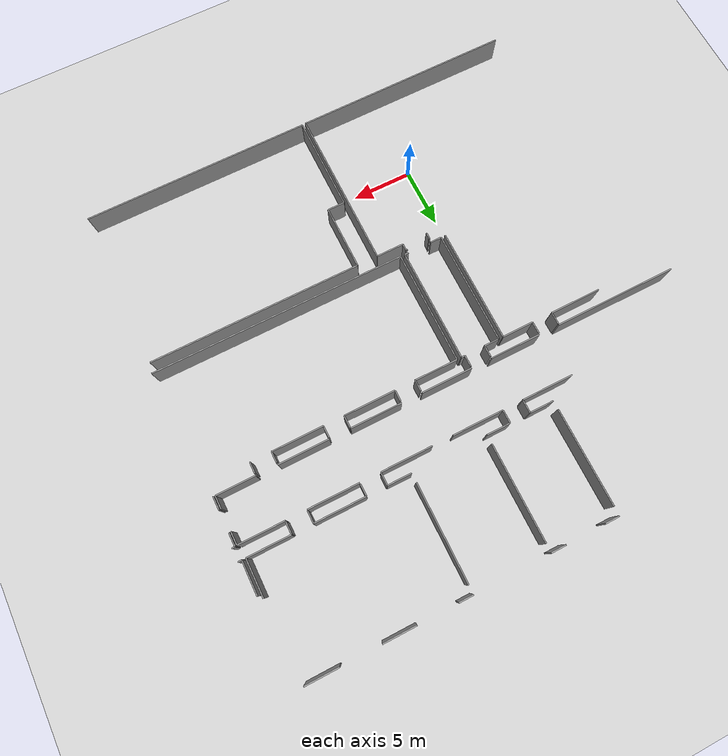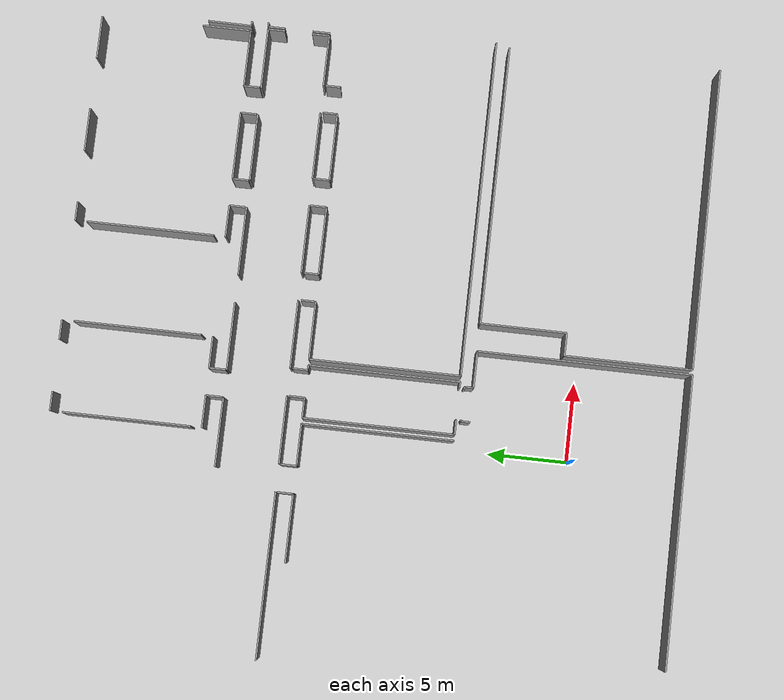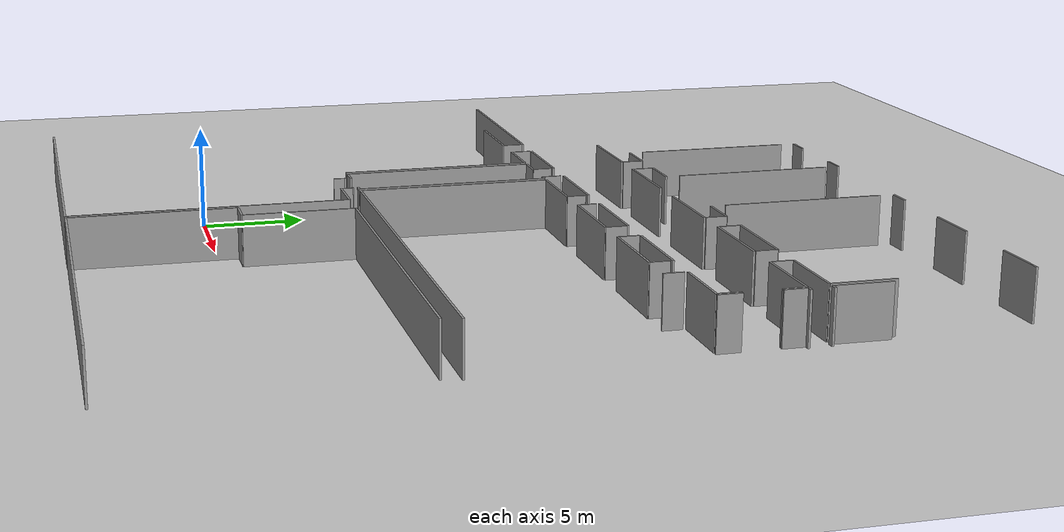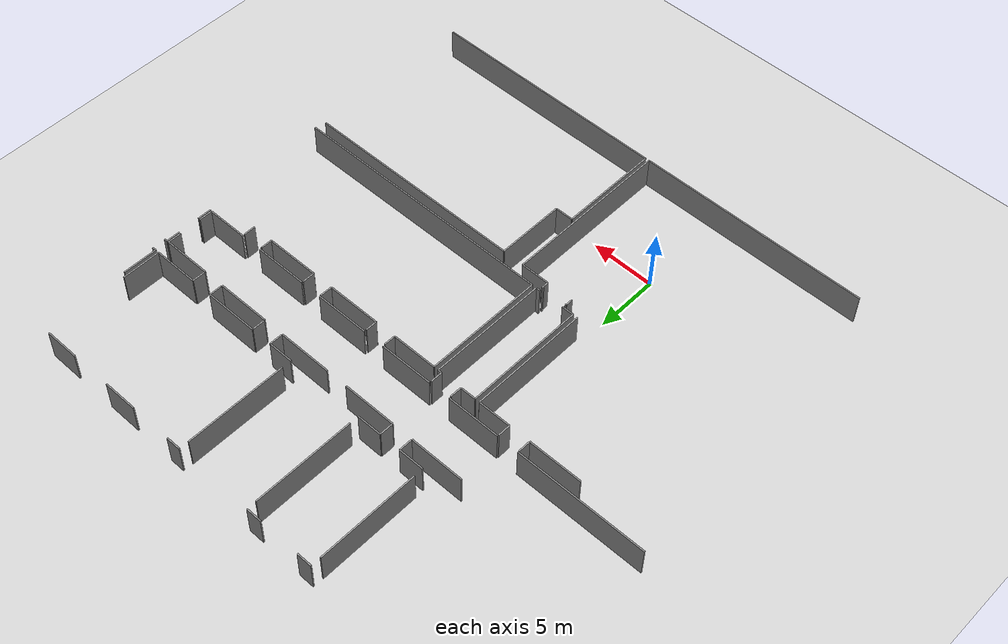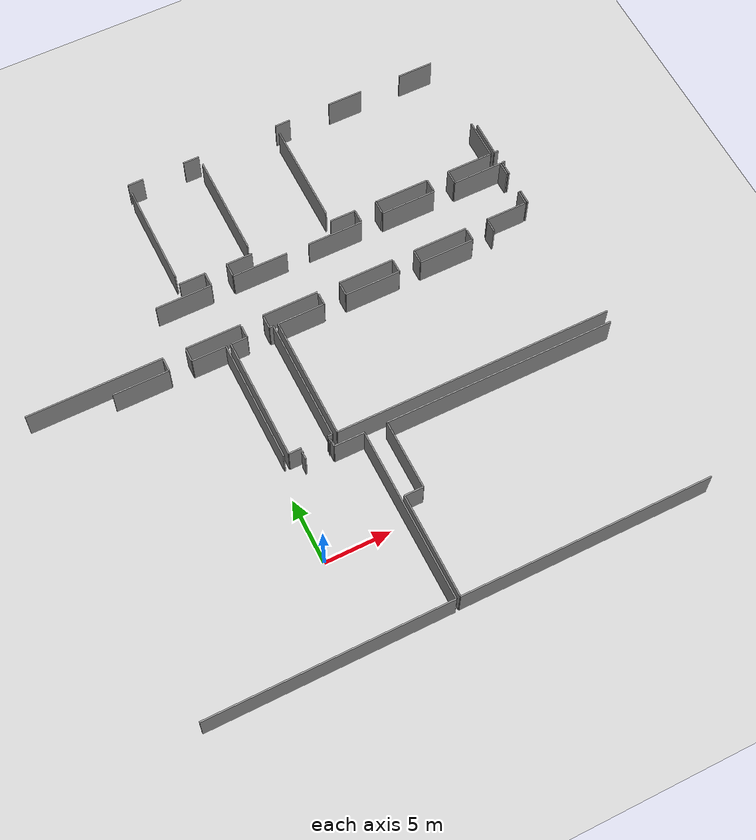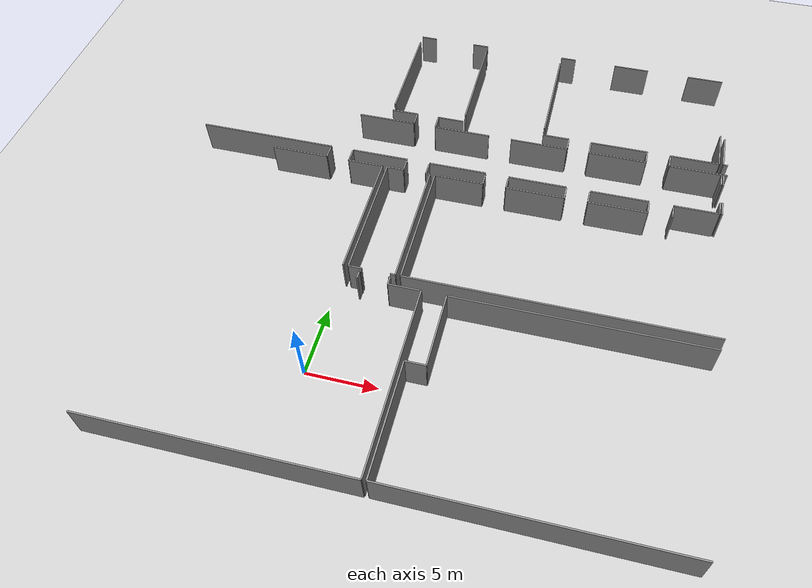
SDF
<sdf version="1.6">
 <world name="default">
  <model name="ground_plane">
   <static>1</static>
   <link name="link">
    <collision name="collision">
     <geometry><plane><normal>0 0 1</normal><size>100 100</size></plane></geometry>
     <surface><friction><ode><mu>100</mu><mu2>50</mu2></ode></friction></surface>
    </collision>
    <visual name="visual">
     <cast_shadows>0</cast_shadows>
     <geometry><plane><normal>0 0 1</normal><size>100 100</size></plane></geometry>
     <material>
      <script><uri>file://media/materials/scripts/gazebo.material</uri><name>Gazebo/Grey</name></script>
     </material>
    </visual>
   </link>
  </model>
  <model name="50052749">
   <static>1</static>
   <link name="Wall_86">
    <collision name="Wall_86_Collision">
     <geometry><box><size>7.98409470145 0.1 2.5</size></box></geometry>
     <pose>3.99204735072 0 1.25 0 0 0</pose>
    </collision>
    <visual name="Wall_86_Visual">
     <pose>3.99204735072 0 1.25 0 0 0</pose>
     <geometry><box><size>7.98409470145 0.1 2.5</size></box></geometry>
     <material>
      <script><uri>file://media/materials/scripts/gazebo.material</uri><name>Gazebo/Grey</name></script>
      <ambient>1 1 1 1</ambient>
     </material>
    </visual>
    <pose>42.047350723 -8.75615594902 0 0 0 1.57079632679</pose>
   </link>
   <link name="Wall_87">
    <collision name="Wall_87_Collision">
     <geometry><box><size>1.20684495884 0.1 2.5</size></box></geometry>
     <pose>0.603422479421 0 1.25 0 0 0</pose>
    </collision>
    <visual name="Wall_87_Visual">
     <pose>0.603422479421 0 1.25 0 0 0</pose>
     <geometry><box><size>1.20684495884 0.1 2.5</size></box></geometry>
     <material>
      <script><uri>file://media/materials/scripts/gazebo.material</uri><name>Gazebo/Grey</name></script>
      <ambient>1 1 1 1</ambient>
     </material>
    </visual>
    <pose>42.047350723 -0.0237108643941 0 0 0 0.0</pose>
   </link>
   <link name="Wall_88">
    <collision name="Wall_88_Collision">
     <geometry><box><size>1.23943154788 0.1 2.5</size></box></geometry>
     <pose>0.619715773938 0 1.25 0 0 0</pose>
    </collision>
    <visual name="Wall_88_Visual">
     <pose>0.619715773938 0 1.25 0 0 0</pose>
     <geometry><box><size>1.23943154788 0.1 2.5</size></box></geometry>
     <material>
      <script><uri>file://media/materials/scripts/gazebo.material</uri><name>Gazebo/Grey</name></script>
      <ambient>1 1 1 1</ambient>
     </material>
    </visual>
    <pose>46.5098114796 -0.0237108643941 0 0 0 0.0</pose>
   </link>
   <link name="Wall_89">
    <collision name="Wall_89_Collision">
     <geometry><box><size>7.99170246542 0.1 2.5</size></box></geometry>
     <pose>3.99585123271 0 1.25 0 0 0</pose>
    </collision>
    <visual name="Wall_89_Visual">
     <pose>3.99585123271 0 1.25 0 0 0</pose>
     <geometry><box><size>7.99170246542 0.1 2.5</size></box></geometry>
     <material>
      <script><uri>file://media/materials/scripts/gazebo.material</uri><name>Gazebo/Grey</name></script>
      <ambient>1 1 1 1</ambient>
     </material>
    </visual>
    <pose>47.7492430275 -0.743405336593 0 0 0 -1.57079632679</pose>
   </link>
   <link name="Wall_90">
    <collision name="Wall_90_Collision">
     <geometry><box><size>1.97992057494 0.1 2.5</size></box></geometry>
     <pose>0.989960287472 0 1.25 0 0 0</pose>
    </collision>
    <visual name="Wall_90_Visual">
     <pose>0.989960287472 0 1.25 0 0 0</pose>
     <geometry><box><size>1.97992057494 0.1 2.5</size></box></geometry>
     <material>
      <script><uri>file://media/materials/scripts/gazebo.material</uri><name>Gazebo/Grey</name></script>
      <ambient>1 1 1 1</ambient>
     </material>
    </visual>
    <pose>47.7492430275 -9.460127709 0 0 0 3.14159265359</pose>
   </link>
   <link name="Wall_91">
    <collision name="Wall_91_Collision">
     <geometry><box><size>1.04556036254 0.1 2.5</size></box></geometry>
     <pose>0.522780181268 0 1.25 0 0 0</pose>
    </collision>
    <visual name="Wall_91_Visual">
     <pose>0.522780181268 0 1.25 0 0 0</pose>
     <geometry><box><size>1.04556036254 0.1 2.5</size></box></geometry>
     <material>
      <script><uri>file://media/materials/scripts/gazebo.material</uri><name>Gazebo/Grey</name></script>
      <ambient>1 1 1 1</ambient>
     </material>
    </visual>
    <pose>45.7693224525 -9.460127709 0 0 0 -1.57079632679</pose>
   </link>
   <link name="Wall_92">
    <collision name="Wall_92_Collision">
     <geometry><box><size>1.0366846379 0.1 2.5</size></box></geometry>
     <pose>0.518342318948 0 1.25 0 0 0</pose>
    </collision>
    <visual name="Wall_92_Visual">
     <pose>0.518342318948 0 1.25 0 0 0</pose>
     <geometry><box><size>1.0366846379 0.1 2.5</size></box></geometry>
     <material>
      <script><uri>file://media/materials/scripts/gazebo.material</uri><name>Gazebo/Grey</name></script>
      <ambient>1 1 1 1</ambient>
     </material>
    </visual>
    <pose>44.0577023538 -10.5056880715 0 0 0 1.57079632679</pose>
   </link>
   <link name="Wall_93">
    <collision name="Wall_93_Collision">
     <geometry><box><size>2.01035163085 0.1 2.5</size></box></geometry>
     <pose>1.00517581543 0 1.25 0 0 0</pose>
    </collision>
    <visual name="Wall_93_Visual">
     <pose>1.00517581543 0 1.25 0 0 0</pose>
     <geometry><box><size>2.01035163085 0.1 2.5</size></box></geometry>
     <material>
      <script><uri>file://media/materials/scripts/gazebo.material</uri><name>Gazebo/Grey</name></script>
      <ambient>1 1 1 1</ambient>
     </material>
    </visual>
    <pose>44.0577023538 -9.46900343364 0 0 0 3.14159265359</pose>
   </link>
   <link name="Wall_94">
    <collision name="Wall_94_Collision">
     <geometry><box><size>7.99335081428 0.1 2.5</size></box></geometry>
     <pose>3.99667540714 0 1.25 0 0 0</pose>
    </collision>
    <visual name="Wall_94_Visual">
     <pose>3.99667540714 0 1.25 0 0 0</pose>
     <geometry><box><size>7.99335081428 0.1 2.5</size></box></geometry>
     <material>
      <script><uri>file://media/materials/scripts/gazebo.material</uri><name>Gazebo/Grey</name></script>
      <ambient>1 1 1 1</ambient>
     </material>
    </visual>
    <pose>54.0464428632 -8.7396724604 0 0 0 1.57079632679</pose>
   </link>
   <link name="Wall_95">
    <collision name="Wall_95_Collision">
     <geometry><box><size>1.17894982426 0.1 2.5</size></box></geometry>
     <pose>0.58947491213 0 1.25 0 0 0</pose>
    </collision>
    <visual name="Wall_95_Visual">
     <pose>0.58947491213 0 1.25 0 0 0</pose>
     <geometry><box><size>1.17894982426 0.1 2.5</size></box></geometry>
     <material>
      <script><uri>file://media/materials/scripts/gazebo.material</uri><name>Gazebo/Grey</name></script>
      <ambient>1 1 1 1</ambient>
     </material>
    </visual>
    <pose>54.0464428632 -0.0281487267139 0 0 0 0.0</pose>
   </link>
   <link name="Wall_96">
    <collision name="Wall_96_Collision">
     <geometry><box><size>2.72193115481 0.1 2.5</size></box></geometry>
     <pose>1.3609655774 0 1.25 0 0 0</pose>
    </collision>
    <visual name="Wall_96_Visual">
     <pose>1.3609655774 0 1.25 0 0 0</pose>
     <geometry><box><size>2.72193115481 0.1 2.5</size></box></geometry>
     <material>
      <script><uri>file://media/materials/scripts/gazebo.material</uri><name>Gazebo/Grey</name></script>
      <ambient>1 1 1 1</ambient>
     </material>
    </visual>
    <pose>58.5089036198 -0.0281487267139 0 0 0 0.0</pose>
   </link>
   <link name="Wall_97">
    <collision name="Wall_97_Collision">
     <geometry><box><size>2.73144085978 0.1 2.5</size></box></geometry>
     <pose>1.36572042989 0 1.25 0 0 0</pose>
    </collision>
    <visual name="Wall_97_Visual">
     <pose>1.36572042989 0 1.25 0 0 0</pose>
     <geometry><box><size>2.73144085978 0.1 2.5</size></box></geometry>
     <material>
      <script><uri>file://media/materials/scripts/gazebo.material</uri><name>Gazebo/Grey</name></script>
      <ambient>1 1 1 1</ambient>
     </material>
    </visual>
    <pose>64.4946923167 -0.0281487267139 0 0 0 0.0</pose>
   </link>
   <link name="Wall_102">
    <collision name="Wall_102_Collision">
     <geometry><box><size>3.04386636709 0.1 2.5</size></box></geometry>
     <pose>1.52193318354 0 1.25 0 0 0</pose>
    </collision>
    <visual name="Wall_102_Visual">
     <pose>1.52193318354 0 1.25 0 0 0</pose>
     <geometry><box><size>3.04386636709 0.1 2.5</size></box></geometry>
     <material>
      <script><uri>file://media/materials/scripts/gazebo.material</uri><name>Gazebo/Grey</name></script>
      <ambient>1 1 1 1</ambient>
     </material>
    </visual>
    <pose>67.3278236216 -6.43401279119 0 0 0 -1.57079632679</pose>
   </link>
   <link name="Wall_103">
    <collision name="Wall_103_Collision">
     <geometry><box><size>3.5958096436 0.1 2.5</size></box></geometry>
     <pose>1.7979048218 0 1.25 0 0 0</pose>
    </collision>
    <visual name="Wall_103_Visual">
     <pose>1.7979048218 0 1.25 0 0 0</pose>
     <geometry><box><size>3.5958096436 0.1 2.5</size></box></geometry>
     <material>
      <script><uri>file://media/materials/scripts/gazebo.material</uri><name>Gazebo/Grey</name></script>
      <ambient>1 1 1 1</ambient>
     </material>
    </visual>
    <pose>67.3278236216 -9.47787915828 0 0 0 3.14159265359</pose>
   </link>
   <link name="Wall_104">
    <collision name="Wall_104_Collision">
     <geometry><box><size>1.0122129971 0.1 2.5</size></box></geometry>
     <pose>0.506106498552 0 1.25 0 0 0</pose>
    </collision>
    <visual name="Wall_104_Visual">
     <pose>0.506106498552 0 1.25 0 0 0</pose>
     <geometry><box><size>1.0122129971 0.1 2.5</size></box></geometry>
     <material>
      <script><uri>file://media/materials/scripts/gazebo.material</uri><name>Gazebo/Grey</name></script>
      <ambient>1 1 1 1</ambient>
     </material>
    </visual>
    <pose>63.732013978 -9.47787915828 0 0 0 -1.57079632679</pose>
   </link>
   <link name="Wall_105">
    <collision name="Wall_105_Collision">
     <geometry><box><size>1.01690445156 0.1 2.5</size></box></geometry>
     <pose>0.508452225778 0 1.25 0 0 0</pose>
    </collision>
    <visual name="Wall_105_Visual">
     <pose>0.508452225778 0 1.25 0 0 0</pose>
     <geometry><box><size>1.01690445156 0.1 2.5</size></box></geometry>
     <material>
      <script><uri>file://media/materials/scripts/gazebo.material</uri><name>Gazebo/Grey</name></script>
      <ambient>1 1 1 1</ambient>
     </material>
    </visual>
    <pose>61.9952882582 -10.4900921554 0 0 0 1.57079632679</pose>
   </link>
   <link name="Wall_106">
    <collision name="Wall_106_Collision">
     <geometry><box><size>4.25020414167 0.1 2.5</size></box></geometry>
     <pose>2.12510207083 0 1.25 0 0 0</pose>
    </collision>
    <visual name="Wall_106_Visual">
     <pose>2.12510207083 0 1.25 0 0 0</pose>
     <geometry><box><size>4.25020414167 0.1 2.5</size></box></geometry>
     <material>
      <script><uri>file://media/materials/scripts/gazebo.material</uri><name>Gazebo/Grey</name></script>
      <ambient>1 1 1 1</ambient>
     </material>
    </visual>
    <pose>61.9952882582 -9.47318770382 0 0 0 3.14159265359</pose>
   </link>
   <link name="Wall_107">
    <collision name="Wall_107_Collision">
     <geometry><box><size>1.01348095777 0.1 2.5</size></box></geometry>
     <pose>0.506740478883 0 1.25 0 0 0</pose>
    </collision>
    <visual name="Wall_107_Visual">
     <pose>0.506740478883 0 1.25 0 0 0</pose>
     <geometry><box><size>1.01348095777 0.1 2.5</size></box></geometry>
     <material>
      <script><uri>file://media/materials/scripts/gazebo.material</uri><name>Gazebo/Grey</name></script>
      <ambient>1 1 1 1</ambient>
     </material>
    </visual>
    <pose>57.7450841165 -9.47318770382 0 0 0 -1.57079632679</pose>
   </link>
   <link name="Wall_108">
    <collision name="Wall_108_Collision">
     <geometry><box><size>1.0024497 0.1 2.5</size></box></geometry>
     <pose>0.50122485 0 1.25 0 0 0</pose>
    </collision>
    <visual name="Wall_108_Visual">
     <pose>0.50122485 0 1.25 0 0 0</pose>
     <geometry><box><size>1.0024497 0.1 2.5</size></box></geometry>
     <material>
      <script><uri>file://media/materials/scripts/gazebo.material</uri><name>Gazebo/Grey</name></script>
      <ambient>1 1 1 1</ambient>
     </material>
    </visual>
    <pose>56.0366339195 -10.4866686616 0 0 0 1.57079632679</pose>
   </link>
   <link name="Wall_109">
    <collision name="Wall_109_Collision">
     <geometry><box><size>1.99019784606 0.1 2.5</size></box></geometry>
     <pose>0.995098923031 0 1.25 0 0 0</pose>
    </collision>
    <visual name="Wall_109_Visual">
     <pose>0.995098923031 0 1.25 0 0 0</pose>
     <geometry><box><size>1.99019784606 0.1 2.5</size></box></geometry>
     <material>
      <script><uri>file://media/materials/scripts/gazebo.material</uri><name>Gazebo/Grey</name></script>
      <ambient>1 1 1 1</ambient>
     </material>
    </visual>
    <pose>56.0366339195 -9.48421896159 0 0 0 3.13898052905</pose>
   </link>
   <link name="Wall_110">
    <collision name="Wall_110_Collision">
     <geometry><box><size>0.319779679155 0.1 2.5</size></box></geometry>
     <pose>0.159889839578 0 1.25 0 0 0</pose>
    </collision>
    <visual name="Wall_110_Visual">
     <pose>0.159889839578 0 1.25 0 0 0</pose>
     <geometry><box><size>0.319779679155 0.1 2.5</size></box></geometry>
     <material>
      <script><uri>file://media/materials/scripts/gazebo.material</uri><name>Gazebo/Grey</name></script>
      <ambient>1 1 1 1</ambient>
     </material>
    </visual>
    <pose>67.6318805885 -9.48650129078 0 0 0 0.0</pose>
   </link>
   <link name="Wall_119">
    <collision name="Wall_119_Collision">
     <geometry><box><size>2.73582435268 0.1 2.5</size></box></geometry>
     <pose>1.36791217634 0 1.25 0 0 0</pose>
    </collision>
    <visual name="Wall_119_Visual">
     <pose>1.36791217634 0 1.25 0 0 0</pose>
     <geometry><box><size>2.73582435268 0.1 2.5</size></box></geometry>
     <material>
      <script><uri>file://media/materials/scripts/gazebo.material</uri><name>Gazebo/Grey</name></script>
      <ambient>1 1 1 1</ambient>
     </material>
    </visual>
    <pose>67.6517875709 -6.75074936475 0 0 0 -1.578072802</pose>
   </link>
   <link name="Wall_125">
    <collision name="Wall_125_Collision">
     <geometry><box><size>4.29217363961 0.1 2.5</size></box></geometry>
     <pose>2.1460868198 0 1.25 0 0 0</pose>
    </collision>
    <visual name="Wall_125_Visual">
     <pose>2.1460868198 0 1.25 0 0 0</pose>
     <geometry><box><size>4.29217363961 0.1 2.5</size></box></geometry>
     <material>
      <script><uri>file://media/materials/scripts/gazebo.material</uri><name>Gazebo/Grey</name></script>
      <ambient>1 1 1 1</ambient>
     </material>
    </visual>
    <pose>39.7504399823 -10.5632534856 0 0 0 0.0</pose>
   </link>
   <link name="Wall_126">
    <collision name="Wall_126_Collision">
     <geometry><box><size>4.24513229902 0.1 2.5</size></box></geometry>
     <pose>2.12256614951 0 1.25 0 0 0</pose>
    </collision>
    <visual name="Wall_126_Visual">
     <pose>2.12256614951 0 1.25 0 0 0</pose>
     <geometry><box><size>4.24513229902 0.1 2.5</size></box></geometry>
     <material>
      <script><uri>file://media/materials/scripts/gazebo.material</uri><name>Gazebo/Grey</name></script>
      <ambient>1 1 1 1</ambient>
     </material>
    </visual>
    <pose>45.7670401233 -10.5632534856 0 0 0 0.0</pose>
   </link>
   <link name="Wall_127">
    <collision name="Wall_127_Collision">
     <geometry><box><size>4.28570704022 0.1 2.5</size></box></geometry>
     <pose>2.14285352011 0 1.25 0 0 0</pose>
    </collision>
    <visual name="Wall_127_Visual">
     <pose>2.14285352011 0 1.25 0 0 0</pose>
     <geometry><box><size>4.28570704022 0.1 2.5</size></box></geometry>
     <material>
      <script><uri>file://media/materials/scripts/gazebo.material</uri><name>Gazebo/Grey</name></script>
      <ambient>1 1 1 1</ambient>
     </material>
    </visual>
    <pose>51.754350373 -10.5632534856 0 0 0 0.0</pose>
   </link>
   <link name="Wall_128">
    <collision name="Wall_128_Collision">
     <geometry><box><size>4.24361074622 0.1 2.5</size></box></geometry>
     <pose>2.12180537311 0 1.25 0 0 0</pose>
    </collision>
    <visual name="Wall_128_Visual">
     <pose>2.12180537311 0 1.25 0 0 0</pose>
     <geometry><box><size>4.24361074622 0.1 2.5</size></box></geometry>
     <material>
      <script><uri>file://media/materials/scripts/gazebo.material</uri><name>Gazebo/Grey</name></script>
      <ambient>1 1 1 1</ambient>
     </material>
    </visual>
    <pose>57.7557349861 -10.5632534856 0 0 0 0.0</pose>
   </link>
   <link name="Wall_129">
    <collision name="Wall_129_Collision">
     <geometry><box><size>3.81846353599 0.1 2.5</size></box></geometry>
     <pose>1.90923176799 0 1.25 0 0 0</pose>
    </collision>
    <visual name="Wall_129_Visual">
     <pose>1.90923176799 0 1.25 0 0 0</pose>
     <geometry><box><size>3.81846353599 0.1 2.5</size></box></geometry>
     <material>
      <script><uri>file://media/materials/scripts/gazebo.material</uri><name>Gazebo/Grey</name></script>
      <ambient>1 1 1 1</ambient>
     </material>
    </visual>
    <pose>63.7250401944 -10.5632534856 0 0 0 0.0</pose>
   </link>
   <link name="Wall_130">
    <collision name="Wall_130_Collision">
     <geometry><box><size>1.07231433252 0.1 2.5</size></box></geometry>
     <pose>0.53615716626 0 1.25 0 0 0</pose>
    </collision>
    <visual name="Wall_130_Visual">
     <pose>0.53615716626 0 1.25 0 0 0</pose>
     <geometry><box><size>1.07231433252 0.1 2.5</size></box></geometry>
     <material>
      <script><uri>file://media/materials/scripts/gazebo.material</uri><name>Gazebo/Grey</name></script>
      <ambient>1 1 1 1</ambient>
     </material>
    </visual>
    <pose>67.5435037303 -10.5632534856 0 0 0 -1.57079632679</pose>
   </link>
   <link name="Wall_131">
    <collision name="Wall_131_Collision">
     <geometry><box><size>1.0799220965 0.1 2.5</size></box></geometry>
     <pose>0.539961048248 0 1.25 0 0 0</pose>
    </collision>
    <visual name="Wall_131_Visual">
     <pose>0.539961048248 0 1.25 0 0 0</pose>
     <geometry><box><size>1.0799220965 0.1 2.5</size></box></geometry>
     <material>
      <script><uri>file://media/materials/scripts/gazebo.material</uri><name>Gazebo/Grey</name></script>
      <ambient>1 1 1 1</ambient>
     </material>
    </visual>
    <pose>67.5435037303 -13.376224216 0 0 0 -1.57079632679</pose>
   </link>
   <link name="Wall_132">
    <collision name="Wall_132_Collision">
     <geometry><box><size>3.22936901206 0.1 2.5</size></box></geometry>
     <pose>1.61468450603 0 1.25 0 0 0</pose>
    </collision>
    <visual name="Wall_132_Visual">
     <pose>1.61468450603 0 1.25 0 0 0</pose>
     <geometry><box><size>3.22936901206 0.1 2.5</size></box></geometry>
     <material>
      <script><uri>file://media/materials/scripts/gazebo.material</uri><name>Gazebo/Grey</name></script>
      <ambient>1 1 1 1</ambient>
     </material>
    </visual>
    <pose>67.5435037303 -14.4561463125 0 0 0 3.14159265359</pose>
   </link>
   <link name="Wall_133">
    <collision name="Wall_133_Collision">
     <geometry><box><size>4.21546201951 0.1 2.5</size></box></geometry>
     <pose>2.10773100975 0 1.25 0 0 0</pose>
    </collision>
    <visual name="Wall_133_Visual">
     <pose>2.10773100975 0 1.25 0 0 0</pose>
     <geometry><box><size>4.21546201951 0.1 2.5</size></box></geometry>
     <material>
      <script><uri>file://media/materials/scripts/gazebo.material</uri><name>Gazebo/Grey</name></script>
      <ambient>1 1 1 1</ambient>
     </material>
    </visual>
    <pose>62.5544589105 -14.4561463125 0 0 0 3.14159265359</pose>
   </link>
   <link name="Wall_134">
    <collision name="Wall_134_Collision">
     <geometry><box><size>4.26782879488 0.1 2.5</size></box></geometry>
     <pose>2.13391439744 0 1.25 0 0 0</pose>
    </collision>
    <visual name="Wall_134_Visual">
     <pose>2.13391439744 0 1.25 0 0 0</pose>
     <geometry><box><size>4.26782879488 0.1 2.5</size></box></geometry>
     <material>
      <script><uri>file://media/materials/scripts/gazebo.material</uri><name>Gazebo/Grey</name></script>
      <ambient>1 1 1 1</ambient>
     </material>
    </visual>
    <pose>56.5870556432 -14.4561463125 0 0 0 3.14159265359</pose>
   </link>
   <link name="Wall_135">
    <collision name="Wall_135_Collision">
     <geometry><box><size>4.25705112925 0.1 2.5</size></box></geometry>
     <pose>2.12852556462 0 1.25 0 0 0</pose>
    </collision>
    <visual name="Wall_135_Visual">
     <pose>2.12852556462 0 1.25 0 0 0</pose>
     <geometry><box><size>4.25705112925 0.1 2.5</size></box></geometry>
     <material>
      <script><uri>file://media/materials/scripts/gazebo.material</uri><name>Gazebo/Grey</name></script>
      <ambient>1 1 1 1</ambient>
     </material>
    </visual>
    <pose>50.5666516202 -14.4561463125 0 0 0 3.14159265359</pose>
   </link>
   <link name="Wall_136">
    <collision name="Wall_136_Collision">
     <geometry><box><size>4.22040706609 0.1 2.5</size></box></geometry>
     <pose>2.11020353305 0 1.25 0 0 0</pose>
    </collision>
    <visual name="Wall_136_Visual">
     <pose>2.11020353305 0 1.25 0 0 0</pose>
     <geometry><box><size>4.22040706609 0.1 2.5</size></box></geometry>
     <material>
      <script><uri>file://media/materials/scripts/gazebo.material</uri><name>Gazebo/Grey</name></script>
      <ambient>1 1 1 1</ambient>
     </material>
    </visual>
    <pose>44.578453798 -14.4561463125 0 0 0 3.14159265359</pose>
   </link>
   <link name="Wall_137">
    <collision name="Wall_137_Collision">
     <geometry><box><size>10.2799910736 0.1 2.5</size></box></geometry>
     <pose>5.13999553678 0 1.25 0 0 0</pose>
    </collision>
    <visual name="Wall_137_Visual">
     <pose>5.13999553678 0 1.25 0 0 0</pose>
     <geometry><box><size>10.2799910736 0.1 2.5</size></box></geometry>
     <material>
      <script><uri>file://media/materials/scripts/gazebo.material</uri><name>Gazebo/Grey</name></script>
      <ambient>1 1 1 1</ambient>
     </material>
    </visual>
    <pose>38.6338738227 -14.4561463125 0 0 0 3.14159265359</pose>
   </link>
   <link name="Wall_156">
    <collision name="Wall_156_Collision">
     <geometry><box><size>1.10477412549 0.1 2.5</size></box></geometry>
     <pose>0.552387062744 0 1.25 0 0 0</pose>
    </collision>
    <visual name="Wall_156_Visual">
     <pose>0.552387062744 0 1.25 0 0 0</pose>
     <geometry><box><size>1.10477412549 0.1 2.5</size></box></geometry>
     <material>
      <script><uri>file://media/materials/scripts/gazebo.material</uri><name>Gazebo/Grey</name></script>
      <ambient>1 1 1 1</ambient>
     </material>
    </visual>
    <pose>67.6979413391 -14.4859433881 0 0 0 1.57079632679</pose>
   </link>
   <link name="Wall_157">
    <collision name="Wall_157_Collision">
     <geometry><box><size>1.09057296606 0.1 2.5</size></box></geometry>
     <pose>0.545286483032 0 1.25 0 0 0</pose>
    </collision>
    <visual name="Wall_157_Visual">
     <pose>0.545286483032 0 1.25 0 0 0</pose>
     <geometry><box><size>1.09057296606 0.1 2.5</size></box></geometry>
     <material>
      <script><uri>file://media/materials/scripts/gazebo.material</uri><name>Gazebo/Grey</name></script>
      <ambient>1 1 1 1</ambient>
     </material>
    </visual>
    <pose>67.6979413391 -11.6349338378 0 0 0 1.57079632679</pose>
   </link>
   <link name="Wall_158">
    <collision name="Wall_158_Collision">
     <geometry><box><size>0.261453488667 0.1 2.5</size></box></geometry>
     <pose>0.130726744333 0 1.25 0 0 0</pose>
    </collision>
    <visual name="Wall_158_Visual">
     <pose>0.130726744333 0 1.25 0 0 0</pose>
     <geometry><box><size>0.261453488667 0.1 2.5</size></box></geometry>
     <material>
      <script><uri>file://media/materials/scripts/gazebo.material</uri><name>Gazebo/Grey</name></script>
      <ambient>1 1 1 1</ambient>
     </material>
    </visual>
    <pose>67.6979413391 -10.5443608717 0 0 0 0.0</pose>
   </link>
   <link name="Wall_165">
    <collision name="Wall_165_Collision">
     <geometry><box><size>21.2738440003 0.1 2.5</size></box></geometry>
     <pose>10.6369220001 0 1.25 0 0 0</pose>
    </collision>
    <visual name="Wall_165_Visual">
     <pose>10.6369220001 0 1.25 0 0 0</pose>
     <geometry><box><size>21.2738440003 0.1 2.5</size></box></geometry>
     <material>
      <script><uri>file://media/materials/scripts/gazebo.material</uri><name>Gazebo/Grey</name></script>
      <ambient>1 1 1 1</ambient>
     </material>
    </visual>
    <pose>46.9807320698 -25.0107776656 0 0 0 0.0</pose>
   </link>
   <link name="Wall_168">
    <collision name="Wall_168_Collision">
     <geometry><box><size>0.942094772452 0.1 2.5</size></box></geometry>
     <pose>0.471047386226 0 1.25 0 0 0</pose>
    </collision>
    <visual name="Wall_168_Visual">
     <pose>0.471047386226 0 1.25 0 0 0</pose>
     <geometry><box><size>0.942094772452 0.1 2.5</size></box></geometry>
     <material>
      <script><uri>file://media/materials/scripts/gazebo.material</uri><name>Gazebo/Grey</name></script>
      <ambient>1 1 1 1</ambient>
     </material>
    </visual>
    <pose>64.3086824874 -15.5547074308 0 0 0 1.57079632679</pose>
   </link>
   <link name="Wall_169">
    <collision name="Wall_169_Collision">
     <geometry><box><size>0.918257111991 0.1 2.5</size></box></geometry>
     <pose>0.459128555996 0 1.25 0 0 0</pose>
    </collision>
    <visual name="Wall_169_Visual">
     <pose>0.459128555996 0 1.25 0 0 0</pose>
     <geometry><box><size>0.918257111991 0.1 2.5</size></box></geometry>
     <material>
      <script><uri>file://media/materials/scripts/gazebo.material</uri><name>Gazebo/Grey</name></script>
      <ambient>1 1 1 1</ambient>
     </material>
    </visual>
    <pose>62.563207839 -14.6126126583 0 0 0 -1.57079632679</pose>
   </link>
   <link name="Wall_170">
    <collision name="Wall_170_Collision">
     <geometry><box><size>4.25197928659 0.1 2.5</size></box></geometry>
     <pose>2.1259896433 0 1.25 0 0 0</pose>
    </collision>
    <visual name="Wall_170_Visual">
     <pose>2.1259896433 0 1.25 0 0 0</pose>
     <geometry><box><size>4.25197928659 0.1 2.5</size></box></geometry>
     <material>
      <script><uri>file://media/materials/scripts/gazebo.material</uri><name>Gazebo/Grey</name></script>
      <ambient>1 1 1 1</ambient>
     </material>
    </visual>
    <pose>62.563207839 -15.5308697703 0 0 0 3.14159265359</pose>
   </link>
   <link name="Wall_171">
    <collision name="Wall_171_Collision">
     <geometry><box><size>1.00295688427 0.1 2.5</size></box></geometry>
     <pose>0.501478442133 0 1.25 0 0 0</pose>
    </collision>
    <visual name="Wall_171_Visual">
     <pose>0.501478442133 0 1.25 0 0 0</pose>
     <geometry><box><size>1.00295688427 0.1 2.5</size></box></geometry>
     <material>
      <script><uri>file://media/materials/scripts/gazebo.material</uri><name>Gazebo/Grey</name></script>
      <ambient>1 1 1 1</ambient>
     </material>
    </visual>
    <pose>58.3112285524 -15.5308697703 0 0 0 1.57079632679</pose>
   </link>
   <link name="Wall_172">
    <collision name="Wall_172_Collision">
     <geometry><box><size>1.00916989151 0.1 2.5</size></box></geometry>
     <pose>0.504584945757 0 1.25 0 0 0</pose>
    </collision>
    <visual name="Wall_172_Visual">
     <pose>0.504584945757 0 1.25 0 0 0</pose>
     <geometry><box><size>1.00916989151 0.1 2.5</size></box></geometry>
     <material>
      <script><uri>file://media/materials/scripts/gazebo.material</uri><name>Gazebo/Grey</name></script>
      <ambient>1 1 1 1</ambient>
     </material>
    </visual>
    <pose>56.5870556432 -14.527912886 0 0 0 -1.57079632679</pose>
   </link>
   <link name="Wall_173">
    <collision name="Wall_173_Collision">
     <geometry><box><size>4.27416859819 0.1 2.5</size></box></geometry>
     <pose>2.1370842991 0 1.25 0 0 0</pose>
    </collision>
    <visual name="Wall_173_Visual">
     <pose>2.1370842991 0 1.25 0 0 0</pose>
     <geometry><box><size>4.27416859819 0.1 2.5</size></box></geometry>
     <material>
      <script><uri>file://media/materials/scripts/gazebo.material</uri><name>Gazebo/Grey</name></script>
      <ambient>1 1 1 1</ambient>
     </material>
    </visual>
    <pose>56.5870556432 -15.5370827775 0 0 0 3.14159265359</pose>
   </link>
   <link name="Wall_174">
    <collision name="Wall_174_Collision">
     <geometry><box><size>0.908113426689 0.1 2.5</size></box></geometry>
     <pose>0.454056713345 0 1.25 0 0 0</pose>
    </collision>
    <visual name="Wall_174_Visual">
     <pose>0.454056713345 0 1.25 0 0 0</pose>
     <geometry><box><size>0.908113426689 0.1 2.5</size></box></geometry>
     <material>
      <script><uri>file://media/materials/scripts/gazebo.material</uri><name>Gazebo/Grey</name></script>
      <ambient>1 1 1 1</ambient>
     </material>
    </visual>
    <pose>52.312887045 -15.5370827775 0 0 0 1.57079632679</pose>
   </link>
   <link name="Wall_175">
    <collision name="Wall_175_Collision">
     <geometry><box><size>0.919905460853 0.1 2.5</size></box></geometry>
     <pose>0.459952730426 0 1.25 0 0 0</pose>
    </collision>
    <visual name="Wall_175_Visual">
     <pose>0.459952730426 0 1.25 0 0 0</pose>
     <geometry><box><size>0.919905460853 0.1 2.5</size></box></geometry>
     <material>
      <script><uri>file://media/materials/scripts/gazebo.material</uri><name>Gazebo/Grey</name></script>
      <ambient>1 1 1 1</ambient>
     </material>
    </visual>
    <pose>50.5902356885 -14.6289693509 0 0 0 -1.57079632679</pose>
   </link>
   <link name="Wall_176">
    <collision name="Wall_176_Collision">
     <geometry><box><size>3.60848925023 0.1 2.5</size></box></geometry>
     <pose>1.80424462511 0 1.25 0 0 0</pose>
    </collision>
    <visual name="Wall_176_Visual">
     <pose>1.80424462511 0 1.25 0 0 0</pose>
     <geometry><box><size>3.60848925023 0.1 2.5</size></box></geometry>
     <material>
      <script><uri>file://media/materials/scripts/gazebo.material</uri><name>Gazebo/Grey</name></script>
      <ambient>1 1 1 1</ambient>
     </material>
    </visual>
    <pose>50.5902356885 -15.5488748117 0 0 0 3.14159265359</pose>
   </link>
   <link name="Wall_177">
    <collision name="Wall_177_Collision">
     <geometry><box><size>9.4619029083 0.1 2.5</size></box></geometry>
     <pose>4.73095145415 0 1.25 0 0 0</pose>
    </collision>
    <visual name="Wall_177_Visual">
     <pose>4.73095145415 0 1.25 0 0 0</pose>
     <geometry><box><size>9.4619029083 0.1 2.5</size></box></geometry>
     <material>
      <script><uri>file://media/materials/scripts/gazebo.material</uri><name>Gazebo/Grey</name></script>
      <ambient>1 1 1 1</ambient>
     </material>
    </visual>
    <pose>46.9817464383 -15.5488748117 0 0 0 -1.57090353235</pose>
   </link>
   <link name="Wall_178">
    <collision name="Wall_178_Collision">
     <geometry><box><size>9.45645062308 0.1 2.5</size></box></geometry>
     <pose>4.72822531154 0 1.25 0 0 0</pose>
    </collision>
    <visual name="Wall_178_Visual">
     <pose>4.72822531154 0 1.25 0 0 0</pose>
     <geometry><box><size>9.45645062308 0.1 2.5</size></box></geometry>
     <material>
      <script><uri>file://media/materials/scripts/gazebo.material</uri><name>Gazebo/Grey</name></script>
      <ambient>1 1 1 1</ambient>
     </material>
    </visual>
    <pose>43.3243139065 -25.0090025207 0 0 0 1.57079632679</pose>
   </link>
   <link name="Wall_179">
    <collision name="Wall_179_Collision">
     <geometry><box><size>1.25553464829 0.1 2.5</size></box></geometry>
     <pose>0.627767324147 0 1.25 0 0 0</pose>
    </collision>
    <visual name="Wall_179_Visual">
     <pose>0.627767324147 0 1.25 0 0 0</pose>
     <geometry><box><size>1.25553464829 0.1 2.5</size></box></geometry>
     <material>
      <script><uri>file://media/materials/scripts/gazebo.material</uri><name>Gazebo/Grey</name></script>
      <ambient>1 1 1 1</ambient>
     </material>
    </visual>
    <pose>43.3243139065 -15.5525518976 0 0 0 0.0</pose>
   </link>
   <link name="Wall_180">
    <collision name="Wall_180_Collision">
     <geometry><box><size>0.959339037466 0.1 2.5</size></box></geometry>
     <pose>0.479669518733 0 1.25 0 0 0</pose>
    </collision>
    <visual name="Wall_180_Visual">
     <pose>0.479669518733 0 1.25 0 0 0</pose>
     <geometry><box><size>0.959339037466 0.1 2.5</size></box></geometry>
     <material>
      <script><uri>file://media/materials/scripts/gazebo.material</uri><name>Gazebo/Grey</name></script>
      <ambient>1 1 1 1</ambient>
     </material>
    </visual>
    <pose>44.5798485548 -15.5525518976 0 0 0 1.57079632679</pose>
   </link>
   <link name="Wall_181">
    <collision name="Wall_181_Collision">
     <geometry><box><size>0.955661951544 0.1 2.5</size></box></geometry>
     <pose>0.477830975772 0 1.25 0 0 0</pose>
    </collision>
    <visual name="Wall_181_Visual">
     <pose>0.477830975772 0 1.25 0 0 0</pose>
     <geometry><box><size>0.955661951544 0.1 2.5</size></box></geometry>
     <material>
      <script><uri>file://media/materials/scripts/gazebo.material</uri><name>Gazebo/Grey</name></script>
      <ambient>1 1 1 1</ambient>
     </material>
    </visual>
    <pose>46.3011051545 -14.5932128602 0 0 0 -1.57079632679</pose>
   </link>
   <link name="Wall_182">
    <collision name="Wall_182_Collision">
     <geometry><box><size>0.308875217455 0.1 2.5</size></box></geometry>
     <pose>0.154437608728 0 1.25 0 0 0</pose>
    </collision>
    <visual name="Wall_182_Visual">
     <pose>0.154437608728 0 1.25 0 0 0</pose>
     <geometry><box><size>0.308875217455 0.1 2.5</size></box></geometry>
     <material>
      <script><uri>file://media/materials/scripts/gazebo.material</uri><name>Gazebo/Grey</name></script>
      <ambient>1 1 1 1</ambient>
     </material>
    </visual>
    <pose>46.3011051545 -15.5488748117 0 0 0 0.0</pose>
   </link>
   <link name="Wall_183">
    <collision name="Wall_183_Collision">
     <geometry><box><size>9.45683101127 0.1 2.5</size></box></geometry>
     <pose>4.72841550564 0 1.25 0 0 0</pose>
    </collision>
    <visual name="Wall_183_Visual">
     <pose>4.72841550564 0 1.25 0 0 0</pose>
     <geometry><box><size>9.45683101127 0.1 2.5</size></box></geometry>
     <material>
      <script><uri>file://media/materials/scripts/gazebo.material</uri><name>Gazebo/Grey</name></script>
      <ambient>1 1 1 1</ambient>
     </material>
    </visual>
    <pose>46.609980372 -15.5488748117 0 0 0 -1.57079632679</pose>
   </link>
   <link name="Wall_184">
    <collision name="Wall_184_Collision">
     <geometry><box><size>0.342602971085 0.1 2.5</size></box></geometry>
     <pose>0.171301485543 0 1.25 0 0 0</pose>
    </collision>
    <visual name="Wall_184_Visual">
     <pose>0.171301485543 0 1.25 0 0 0</pose>
     <geometry><box><size>0.342602971085 0.1 2.5</size></box></geometry>
     <material>
      <script><uri>file://media/materials/scripts/gazebo.material</uri><name>Gazebo/Grey</name></script>
      <ambient>1 1 1 1</ambient>
     </material>
    </visual>
    <pose>46.609980372 -25.005705823 0 0 0 3.14159265359</pose>
   </link>
   <link name="Wall_185">
    <collision name="Wall_185_Collision">
     <geometry><box><size>0.95173698318 0.1 2.5</size></box></geometry>
     <pose>0.47586849159 0 1.25 0 0 0</pose>
    </collision>
    <visual name="Wall_185_Visual">
     <pose>0.47586849159 0 1.25 0 0 0</pose>
     <geometry><box><size>0.95173698318 0.1 2.5</size></box></geometry>
     <material>
      <script><uri>file://media/materials/scripts/gazebo.material</uri><name>Gazebo/Grey</name></script>
      <ambient>1 1 1 1</ambient>
     </material>
    </visual>
    <pose>44.27604518 -25.005705823 0 0 0 -3.13812877189</pose>
   </link>
   <link name="Wall_187">
    <collision name="Wall_187_Collision">
     <geometry><box><size>9.4714125589 0.1 2.5</size></box></geometry>
     <pose>4.73570627945 0 1.25 0 0 0</pose>
    </collision>
    <visual name="Wall_187_Visual">
     <pose>4.73570627945 0 1.25 0 0 0</pose>
     <geometry><box><size>9.4714125589 0.1 2.5</size></box></geometry>
     <material>
      <script><uri>file://media/materials/scripts/gazebo.material</uri><name>Gazebo/Grey</name></script>
      <ambient>1 1 1 1</ambient>
     </material>
    </visual>
    <pose>42.9562249261 -25.0218089234 0 0 0 1.57079632679</pose>
   </link>
   <link name="Wall_188">
    <collision name="Wall_188_Collision">
     <geometry><box><size>2.61377411027 0.1 2.5</size></box></geometry>
     <pose>1.30688705514 0 1.25 0 0 0</pose>
    </collision>
    <visual name="Wall_188_Visual">
     <pose>1.30688705514 0 1.25 0 0 0</pose>
     <geometry><box><size>2.61377411027 0.1 2.5</size></box></geometry>
     <material>
      <script><uri>file://media/materials/scripts/gazebo.material</uri><name>Gazebo/Grey</name></script>
      <ambient>1 1 1 1</ambient>
     </material>
    </visual>
    <pose>42.9562249261 -15.5503963645 0 0 0 3.14159265359</pose>
   </link>
   <link name="Wall_189">
    <collision name="Wall_189_Collision">
     <geometry><box><size>1.01208620104 0.1 2.5</size></box></geometry>
     <pose>0.506043100519 0 1.25 0 0 0</pose>
    </collision>
    <visual name="Wall_189_Visual">
     <pose>0.506043100519 0 1.25 0 0 0</pose>
     <geometry><box><size>1.01208620104 0.1 2.5</size></box></geometry>
     <material>
      <script><uri>file://media/materials/scripts/gazebo.material</uri><name>Gazebo/Grey</name></script>
      <ambient>1 1 1 1</ambient>
     </material>
    </visual>
    <pose>40.3424508158 -15.5503963645 0 0 0 1.57079632679</pose>
   </link>
   <link name="Wall_190">
    <collision name="Wall_190_Collision">
     <geometry><box><size>1.00473202919 0.1 2.5</size></box></geometry>
     <pose>0.502366014597 0 1.25 0 0 0</pose>
    </collision>
    <visual name="Wall_190_Visual">
     <pose>0.502366014597 0 1.25 0 0 0</pose>
     <geometry><box><size>1.00473202919 0.1 2.5</size></box></geometry>
     <material>
      <script><uri>file://media/materials/scripts/gazebo.material</uri><name>Gazebo/Grey</name></script>
      <ambient>1 1 1 1</ambient>
     </material>
    </visual>
    <pose>38.6149812088 -14.5383101635 0 0 0 -1.57079632679</pose>
   </link>
   <link name="Wall_191">
    <collision name="Wall_191_Collision">
     <geometry><box><size>4.24323035802 0.1 2.5</size></box></geometry>
     <pose>2.12161517901 0 1.25 0 0 0</pose>
    </collision>
    <visual name="Wall_191_Visual">
     <pose>2.12161517901 0 1.25 0 0 0</pose>
     <geometry><box><size>4.24323035802 0.1 2.5</size></box></geometry>
     <material>
      <script><uri>file://media/materials/scripts/gazebo.material</uri><name>Gazebo/Grey</name></script>
      <ambient>1 1 1 1</ambient>
     </material>
    </visual>
    <pose>38.6149812088 -15.5430421927 0 0 0 3.14159265359</pose>
   </link>
   <link name="Wall_410">
    <collision name="Wall_410_Collision">
     <geometry><box><size>7.96989354202 0.1 2.5</size></box></geometry>
     <pose>3.98494677101 0 1.25 0 0 0</pose>
    </collision>
    <visual name="Wall_410_Visual">
     <pose>3.98494677101 0 1.25 0 0 0</pose>
     <geometry><box><size>7.96989354202 0.1 2.5</size></box></geometry>
     <material>
      <script><uri>file://media/materials/scripts/gazebo.material</uri><name>Gazebo/Grey</name></script>
      <ambient>1 1 1 1</ambient>
     </material>
    </visual>
    <pose>48.9322503259 -39.2229683466 0 0 0 1.57079632679</pose>
   </link>
   <link name="Wall_411">
    <collision name="Wall_411_Collision">
     <geometry><box><size>1.43140079222 0.1 2.5</size></box></geometry>
     <pose>0.715700396111 0 1.25 0 0 0</pose>
    </collision>
    <visual name="Wall_411_Visual">
     <pose>0.715700396111 0 1.25 0 0 0</pose>
     <geometry><box><size>1.43140079222 0.1 2.5</size></box></geometry>
     <material>
      <script><uri>file://media/materials/scripts/gazebo.material</uri><name>Gazebo/Grey</name></script>
      <ambient>1 1 1 1</ambient>
     </material>
    </visual>
    <pose>48.9322503259 -31.2530748046 0 0 0 0.0</pose>
   </link>
   <link name="Wall_412">
    <collision name="Wall_412_Collision">
     <geometry><box><size>5.38363417813 0.1 2.5</size></box></geometry>
     <pose>2.69181708907 0 1.25 0 0 0</pose>
    </collision>
    <visual name="Wall_412_Visual">
     <pose>2.69181708907 0 1.25 0 0 0</pose>
     <geometry><box><size>5.38363417813 0.1 2.5</size></box></geometry>
     <material>
      <script><uri>file://media/materials/scripts/gazebo.material</uri><name>Gazebo/Grey</name></script>
      <ambient>1 1 1 1</ambient>
     </material>
    </visual>
    <pose>50.3636511181 -31.2530748046 0 0 0 1.57079632679</pose>
   </link>
   <link name="Wall_413">
    <collision name="Wall_413_Collision">
     <geometry><box><size>17.6728357179 0.1 2.5</size></box></geometry>
     <pose>8.83641785897 0 1.25 0 0 0</pose>
    </collision>
    <visual name="Wall_413_Visual">
     <pose>8.83641785897 0 1.25 0 0 0</pose>
     <geometry><box><size>17.6728357179 0.1 2.5</size></box></geometry>
     <material>
      <script><uri>file://media/materials/scripts/gazebo.material</uri><name>Gazebo/Grey</name></script>
      <ambient>1 1 1 1</ambient>
     </material>
    </visual>
    <pose>50.3636511181 -25.8694406265 0 0 0 0.0</pose>
   </link>
   <link name="Wall_416">
    <collision name="Wall_416_Collision">
     <geometry><box><size>19.1042386313 0.1 2.5</size></box></geometry>
     <pose>9.55211931565 0 1.25 0 0 0</pose>
    </collision>
    <visual name="Wall_416_Visual">
     <pose>9.55211931565 0 1.25 0 0 0</pose>
     <geometry><box><size>19.1042386313 0.1 2.5</size></box></geometry>
     <material>
      <script><uri>file://media/materials/scripts/gazebo.material</uri><name>Gazebo/Grey</name></script>
      <ambient>1 1 1 1</ambient>
     </material>
    </visual>
    <pose>68.036486836 -39.2319708673 0 0 0 3.14112142198</pose>
   </link>
   <link name="Wall_424">
    <collision name="Wall_424_Collision">
     <geometry><box><size>0.572357443183 0.1 2.5</size></box></geometry>
     <pose>0.286178721591 0 1.25 0 0 0</pose>
    </collision>
    <visual name="Wall_424_Visual">
     <pose>0.286178721591 0 1.25 0 0 0</pose>
     <geometry><box><size>0.572357443183 0.1 2.5</size></box></geometry>
     <material>
      <script><uri>file://media/materials/scripts/gazebo.material</uri><name>Gazebo/Grey</name></script>
      <ambient>1 1 1 1</ambient>
     </material>
    </visual>
    <pose>44.1942617172 -25.8734981006 0 0 0 1.57079632679</pose>
   </link>
   <link name="Wall_425">
    <collision name="Wall_425_Collision">
     <geometry><box><size>0.0869821014673 0.1 2.5</size></box></geometry>
     <pose>0.0434910507336 0 1.25 0 0 0</pose>
    </collision>
    <visual name="Wall_425_Visual">
     <pose>0.0434910507336 0 1.25 0 0 0</pose>
     <geometry><box><size>0.0869821014673 0.1 2.5</size></box></geometry>
     <material>
      <script><uri>file://media/materials/scripts/gazebo.material</uri><name>Gazebo/Grey</name></script>
      <ambient>1 1 1 1</ambient>
     </material>
    </visual>
    <pose>44.1942617172 -25.3011406574 0 0 0 0.0</pose>
   </link>
   <link name="Wall_426">
    <collision name="Wall_426_Collision">
     <geometry><box><size>0.115130828181 0.1 2.5</size></box></geometry>
     <pose>0.0575654140906 0 1.25 0 0 0</pose>
    </collision>
    <visual name="Wall_426_Visual">
     <pose>0.0575654140906 0 1.25 0 0 0</pose>
     <geometry><box><size>0.115130828181 0.1 2.5</size></box></geometry>
     <material>
      <script><uri>file://media/materials/scripts/gazebo.material</uri><name>Gazebo/Grey</name></script>
      <ambient>1 1 1 1</ambient>
     </material>
    </visual>
    <pose>46.2222380013 -25.3011406574 0 0 0 0.0</pose>
   </link>
   <link name="Wall_427">
    <collision name="Wall_427_Collision">
     <geometry><box><size>0.561960165748 0.1 2.5</size></box></geometry>
     <pose>0.280980082874 0 1.25 0 0 0</pose>
    </collision>
    <visual name="Wall_427_Visual">
     <pose>0.280980082874 0 1.25 0 0 0</pose>
     <geometry><box><size>0.561960165748 0.1 2.5</size></box></geometry>
     <material>
      <script><uri>file://media/materials/scripts/gazebo.material</uri><name>Gazebo/Grey</name></script>
      <ambient>1 1 1 1</ambient>
     </material>
    </visual>
    <pose>46.3373688295 -25.3011406574 0 0 0 -1.57079632679</pose>
   </link>
   <link name="Wall_428">
    <collision name="Wall_428_Collision">
     <geometry><box><size>2.28790821994 0.1 2.5</size></box></geometry>
     <pose>1.14395410997 0 1.25 0 0 0</pose>
    </collision>
    <visual name="Wall_428_Visual">
     <pose>1.14395410997 0 1.25 0 0 0</pose>
     <geometry><box><size>2.28790821994 0.1 2.5</size></box></geometry>
     <material>
      <script><uri>file://media/materials/scripts/gazebo.material</uri><name>Gazebo/Grey</name></script>
      <ambient>1 1 1 1</ambient>
     </material>
    </visual>
    <pose>46.3373688295 -25.8631008232 0 0 0 0.0</pose>
   </link>
   <link name="Wall_429">
    <collision name="Wall_429_Collision">
     <geometry><box><size>13.3815496508 0.1 2.5</size></box></geometry>
     <pose>6.6907748254 0 1.25 0 0 0</pose>
    </collision>
    <visual name="Wall_429_Visual">
     <pose>6.6907748254 0 1.25 0 0 0</pose>
     <geometry><box><size>13.3815496508 0.1 2.5</size></box></geometry>
     <material>
      <script><uri>file://media/materials/scripts/gazebo.material</uri><name>Gazebo/Grey</name></script>
      <ambient>1 1 1 1</ambient>
     </material>
    </visual>
    <pose>48.6252770494 -25.8631008232 0 0 0 -1.57079632679</pose>
   </link>
   <link name="Wall_430">
    <collision name="Wall_430_Collision">
     <geometry><box><size>18.2402557934 0.1 2.5</size></box></geometry>
     <pose>9.12012789672 0 1.25 0 0 0</pose>
    </collision>
    <visual name="Wall_430_Visual">
     <pose>9.12012789672 0 1.25 0 0 0</pose>
     <geometry><box><size>18.2402557934 0.1 2.5</size></box></geometry>
     <material>
      <script><uri>file://media/materials/scripts/gazebo.material</uri><name>Gazebo/Grey</name></script>
      <ambient>1 1 1 1</ambient>
     </material>
    </visual>
    <pose>48.6252770494 -39.244650474 0 0 0 -3.14067506322</pose>
   </link>
   <pose>-42.45 32.2703051221 0 0 0 0</pose>
  </model>
 </world>
</sdf>
